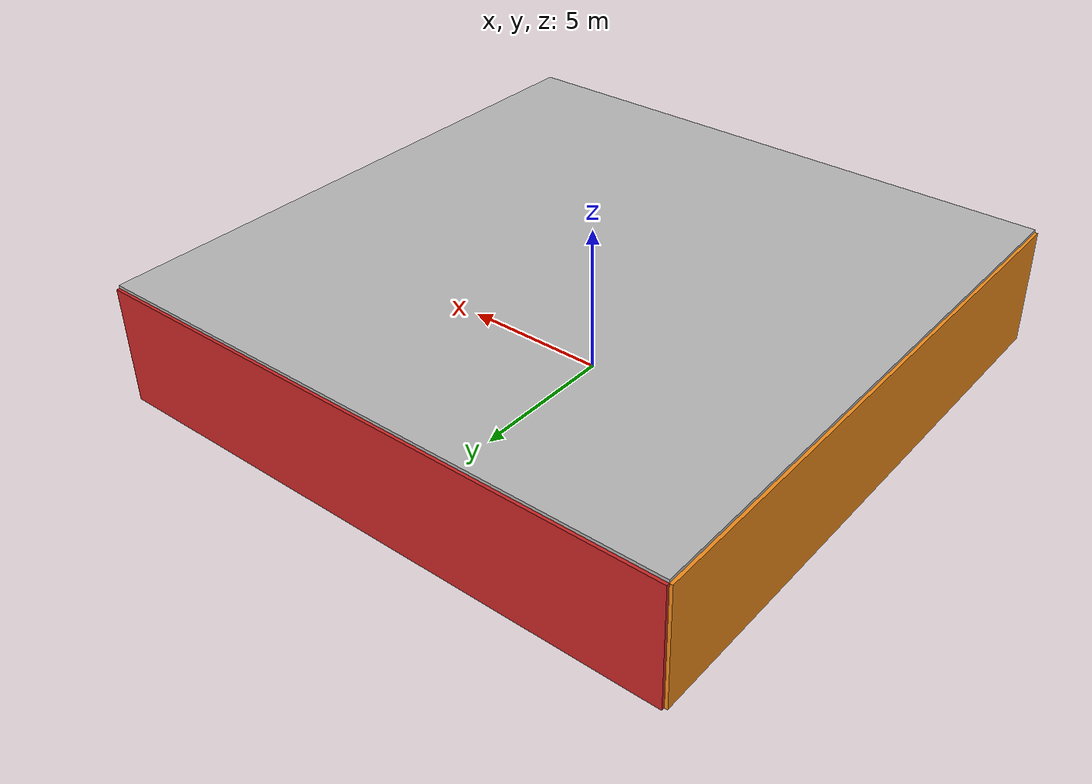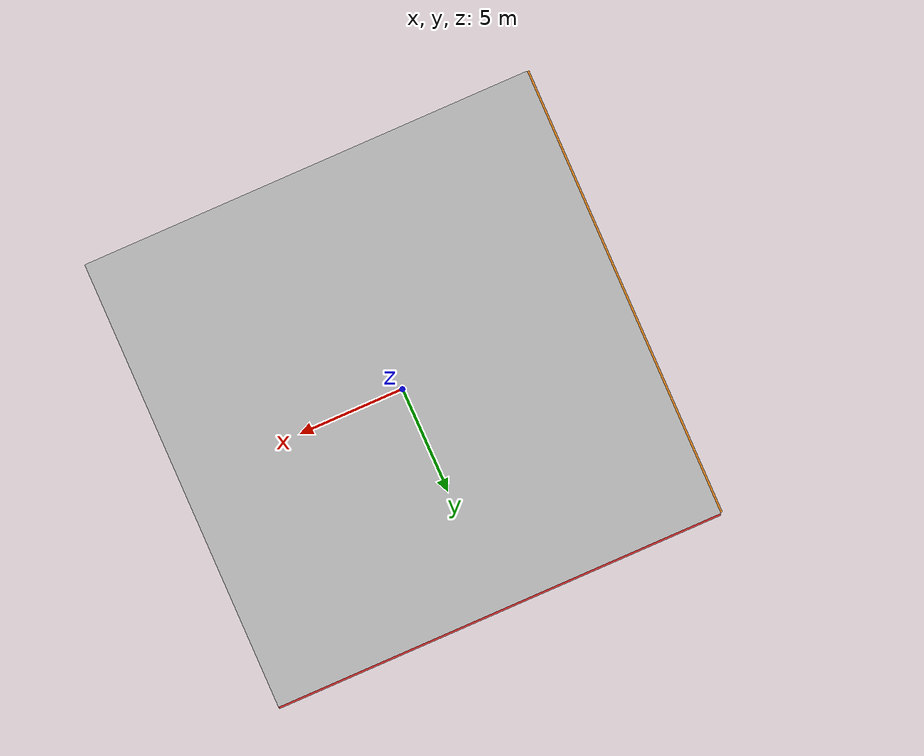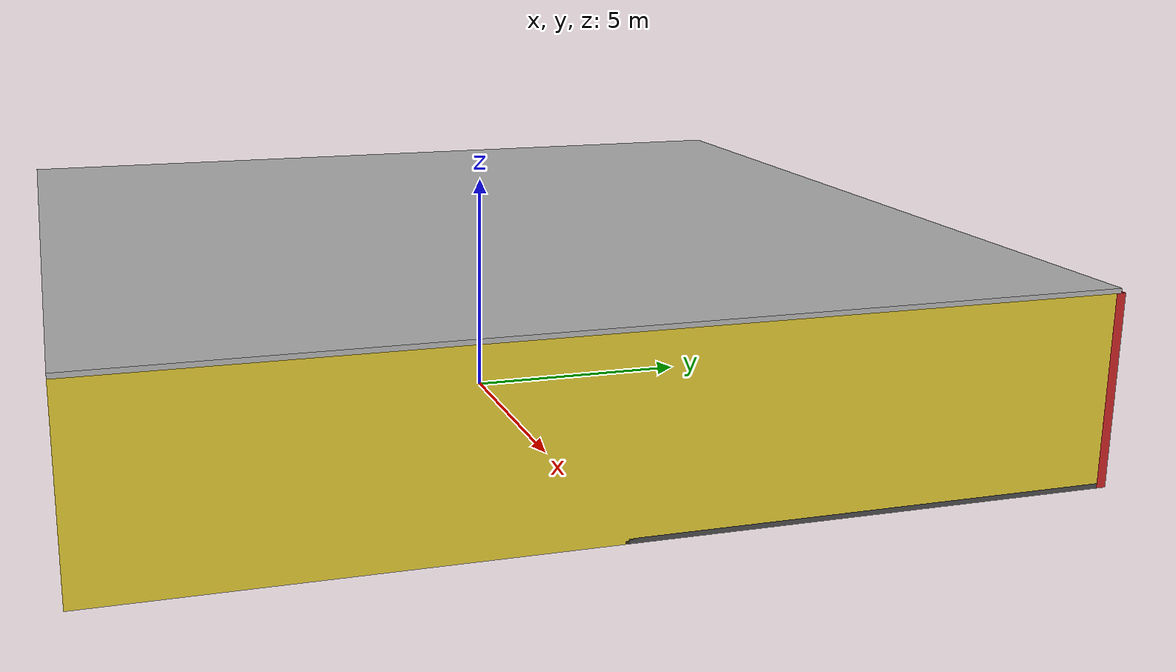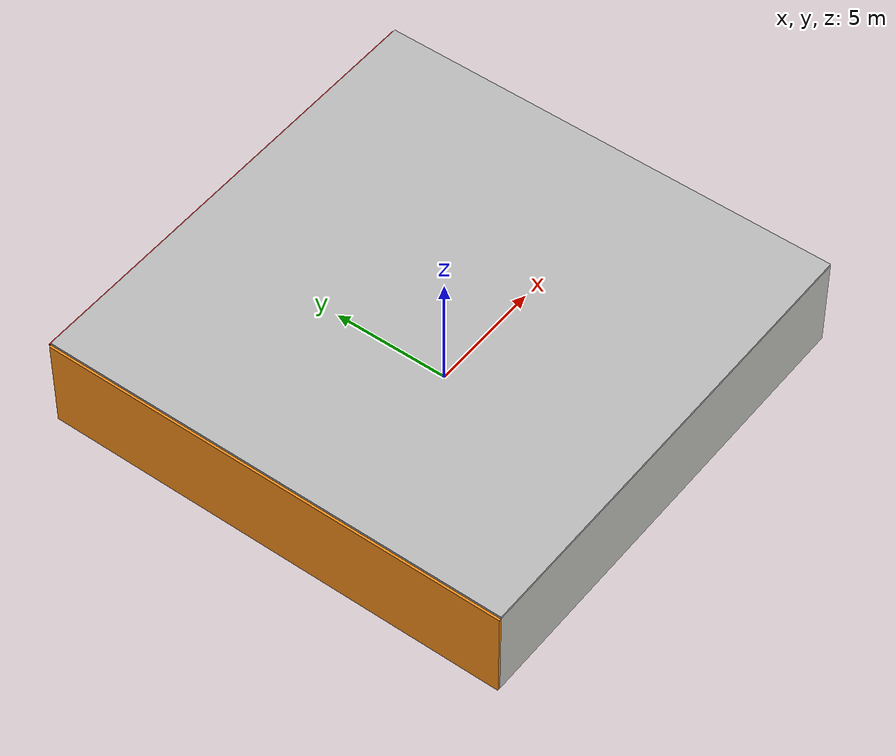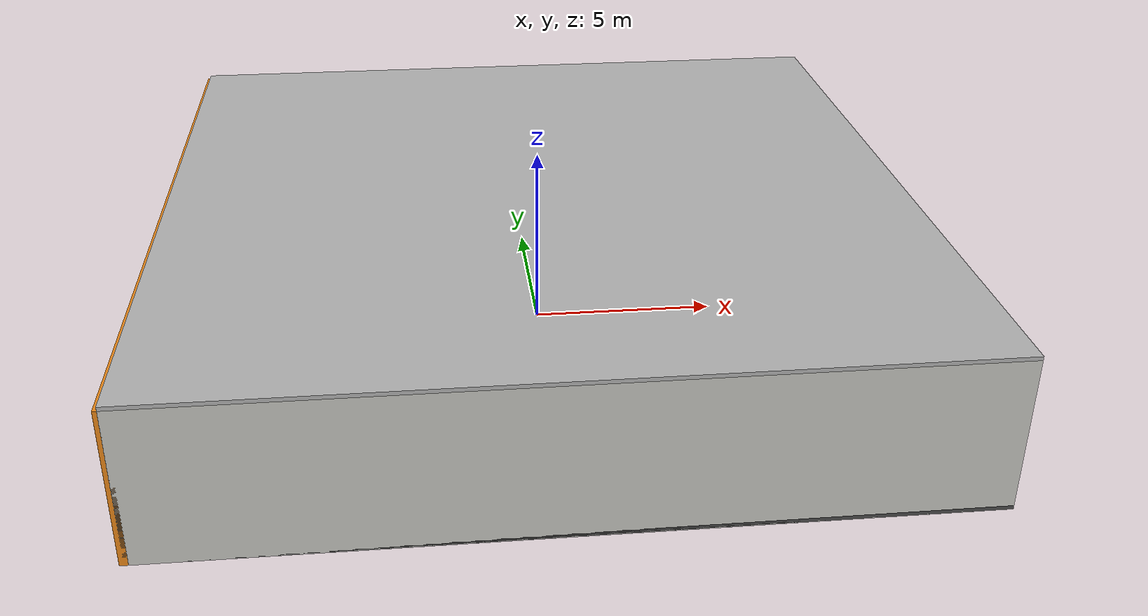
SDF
<sdf version="1.4">
 <world name="default">
  <physics type="ode">
   <max_step_size>0.001</max_step_size>
   <real_time_factor>1</real_time_factor>
   <real_time_update_rate>1000</real_time_update_rate>
   <gravity>0 0 -9.8</gravity>
  </physics>
  <scene><ambient>0.4 0.4 0.4 1</ambient><background>0.7 0.7 0.7 1</background><shadows>1</shadows></scene>
  <model name="Surrounding">
   <static>1</static>
   <link name="Ceiling">
    <collision name="Ceiling_Collision"><geometry><box><size>20 20 0.1</size></box></geometry></collision>
    <visual name="Ceiling_Visual">
     <geometry><box><size>20 20 0.1</size></box></geometry>
     <material>
      <script><uri>file://media/materials/scripts/gazebo.material</uri><name>Gazebo/LightOff</name></script>
     </material>
    </visual>
    <pose>0 0 4.05 0 0 0</pose>
   </link>
   <link name="Wall_South">
    <collision name="Wall_South_Collision">
     <geometry><box><size>20 0 4</size></box></geometry>
     <pose>0 0 2 0 -0 0</pose>
    </collision>
    <visual name="Wall_South_Visual">
     <pose>0 0 2 0 -0 0</pose>
     <geometry><box><size>20 0 4</size></box></geometry>
     <material>
      <script><uri>file://media/materials/scripts/gazebo.material</uri><name>Gazebo/CeilingTiled</name></script>
     </material>
    </visual>
    <velocity_decay><linear>0</linear><angular>0</angular></velocity_decay>
    <pose>0 -10 0 0 -0 0</pose>
   </link>
   <link name="Wall_East">
    <collision name="Wall_21_Collision">
     <geometry><box><size>20 0 4</size></box></geometry>
     <pose>0 0 2 0 -0 0</pose>
    </collision>
    <visual name="Wall_21_Visual">
     <pose>0 0 2 0 -0 0</pose>
     <geometry><box><size>20 0 4</size></box></geometry>
     <material>
      <script><uri>file://media/materials/scripts/gazebo.material</uri><name>Gazebo/ZincYellow</name></script>
     </material>
    </visual>
    <velocity_decay><linear>0</linear><angular>0</angular></velocity_decay>
    <pose>10 0 0 0 -0 1.5708</pose>
   </link>
   <link name="Wall_North">
    <collision name="Wall_22_Collision">
     <geometry><box><size>20 0.2 4</size></box></geometry>
     <pose>0 0 2 0 -0 0</pose>
    </collision>
    <visual name="Wall_22_Visual">
     <pose>0 0 2 0 -0 0</pose>
     <geometry><box><size>20 0.2 4</size></box></geometry>
     <material>
      <script><uri>file://media/materials/scripts/gazebo.material</uri><name>Gazebo/RedBright</name></script>
     </material>
    </visual>
    <velocity_decay><linear>0</linear><angular>0</angular></velocity_decay>
    <pose>0 10 0 0 -0 0</pose>
   </link>
   <link name="Wall_West">
    <collision name="Wall_23_Collision">
     <geometry><box><size>20 0.2 4</size></box></geometry>
     <pose>0 0 2 0 -0 0</pose>
    </collision>
    <visual name="Wall_23_Visual">
     <pose>0 0 2 0 -0 0</pose>
     <geometry><box><size>20 0.2 4</size></box></geometry>
     <material>
      <script><uri>file://media/materials/scripts/gazebo.material</uri><name>Gazebo/Orange</name></script>
     </material>
    </visual>
    <velocity_decay><linear>0</linear><angular>0</angular></velocity_decay>
    <pose>-10 0 0 0 0 -1.5708</pose>
   </link>
   <link name="Ground_link">
    <collision name="collision">
     <pose>0 0 .05 0 -0 0</pose>
     <geometry><box><size>20 20 0.1</size></box></geometry>
    </collision>
    <visual name="visual">
     <pose>0 0 .05 0 -0 0</pose>
     <geometry><box><size>20 20 0.1</size></box></geometry>
     <material>
      <script><uri>file://media/materials/scripts/gazebo.material</uri><name>Gazebo/DarkGrey</name></script>
     </material>
    </visual>
   </link>
   <static>1</static>
  </model>
  <spherical_coordinates>
   <surface_model>EARTH_WGS84</surface_model>
   <latitude_deg>0</latitude_deg>
   <longitude_deg>0</longitude_deg>
   <elevation>0</elevation>
   <heading_deg>0</heading_deg>
  </spherical_coordinates>
  <light name="lightball_0" type="diffuse">
   <diffuse>0.8 0.8 0.8 1</diffuse>
   <specular>0.2 0.2 0.2 1</specular>
   <attenuation>
    <range>100</range>
    <constant>0.7</constant>
    <linear>0.01</linear>
    <quadratic>0.001</quadratic>
   </attenuation>
   <direction>-0.5 0.1 -0.9</direction>
   <pose>9.75379502293 5.22299925387 3.54563603432 0 0 0</pose>
  </light>
  <light name="lightball_1" type="diffuse">
   <diffuse>0.8 0.8 0.8 1</diffuse>
   <specular>0.2 0.2 0.2 1</specular>
   <attenuation>
    <range>100</range>
    <constant>0.7</constant>
    <linear>0.01</linear>
    <quadratic>0.001</quadratic>
   </attenuation>
   <direction>-0.5 0.1 -0.9</direction>
   <pose>4.8613117871 6.20592162429 3.20650017933 0 0 0</pose>
  </light>
  <light name="lightball_2" type="diffuse">
   <diffuse>0.8 0.8 0.8 1</diffuse>
   <specular>0.2 0.2 0.2 1</specular>
   <attenuation>
    <range>100</range>
    <constant>0.7</constant>
    <linear>0.01</linear>
    <quadratic>0.001</quadratic>
   </attenuation>
   <direction>-0.5 0.1 -0.9</direction>
   <pose>3.61953346966 -7.15001384966 2.30111035458 0 0 0</pose>
  </light>
  <light name="lightball_3" type="diffuse">
   <diffuse>0.8 0.8 0.8 1</diffuse>
   <specular>0.2 0.2 0.2 1</specular>
   <attenuation>
    <range>100</range>
    <constant>0.7</constant>
    <linear>0.01</linear>
    <quadratic>0.001</quadratic>
   </attenuation>
   <direction>-0.5 0.1 -0.9</direction>
   <pose>-3.00861466092 -6.07999579871 0.984973443116 0 0 0</pose>
  </light>
  <light name="lightball_4" type="diffuse">
   <diffuse>0.8 0.8 0.8 1</diffuse>
   <specular>0.2 0.2 0.2 1</specular>
   <attenuation>
    <range>100</range>
    <constant>0.7</constant>
    <linear>0.01</linear>
    <quadratic>0.001</quadratic>
   </attenuation>
   <direction>-0.5 0.1 -0.9</direction>
   <pose>0.816440647269 7.89077212101 0.987302139465 0 0 0</pose>
  </light>
  <light name="lightball_5" type="diffuse">
   <diffuse>0.8 0.8 0.8 1</diffuse>
   <specular>0.2 0.2 0.2 1</specular>
   <attenuation>
    <range>100</range>
    <constant>0.7</constant>
    <linear>0.01</linear>
    <quadratic>0.001</quadratic>
   </attenuation>
   <direction>-0.5 0.1 -0.9</direction>
   <pose>-1.50697557592 7.11656789114 0.981764758179 0 0 0</pose>
  </light>
  <light name="lightball_6" type="diffuse">
   <diffuse>0.8 0.8 0.8 1</diffuse>
   <specular>0.2 0.2 0.2 1</specular>
   <attenuation>
    <range>100</range>
    <constant>0.7</constant>
    <linear>0.01</linear>
    <quadratic>0.001</quadratic>
   </attenuation>
   <direction>-0.5 0.1 -0.9</direction>
   <pose>8.97899305009 -6.10249333836 1.40724844488 0 0 0</pose>
  </light>
  <light name="lightball_7" type="diffuse">
   <diffuse>0.8 0.8 0.8 1</diffuse>
   <specular>0.2 0.2 0.2 1</specular>
   <attenuation>
    <range>100</range>
    <constant>0.7</constant>
    <linear>0.01</linear>
    <quadratic>0.001</quadratic>
   </attenuation>
   <direction>-0.5 0.1 -0.9</direction>
   <pose>1.42422586102 -7.73610299485 3.39832099497 0 0 0</pose>
  </light>
  <light name="lightball_8" type="diffuse">
   <diffuse>0.8 0.8 0.8 1</diffuse>
   <specular>0.2 0.2 0.2 1</specular>
   <attenuation>
    <range>100</range>
    <constant>0.7</constant>
    <linear>0.01</linear>
    <quadratic>0.001</quadratic>
   </attenuation>
   <direction>-0.5 0.1 -0.9</direction>
   <pose>-3.71738559241 2.4664898024 1.31357020277 0 0 0</pose>
  </light>
  <light name="lightball_9" type="diffuse">
   <diffuse>0.8 0.8 0.8 1</diffuse>
   <specular>0.2 0.2 0.2 1</specular>
   <attenuation>
    <range>100</range>
    <constant>0.7</constant>
    <linear>0.01</linear>
    <quadratic>0.001</quadratic>
   </attenuation>
   <direction>-0.5 0.1 -0.9</direction>
   <pose>-2.12030145598 2.98087122088 0.898067017659 0 0 0</pose>
  </light>
  <include>
   <uri>model://construction_cone</uri>
   <pose>-4.57249996492 1.802137626 0 0 0 1.91014632753</pose>
  </include>
  <include>
   <uri>model://construction_cone</uri>
   <pose>-1.19357871626 -4.11086973114 0 0 0 0.30456511672</pose>
  </include>
  <include>
   <uri>model://textured_shapes</uri>
   <pose>3.7667640707 -7.2223985151 0 0 0 0.596215612567</pose>
  </include>
  <include><uri>model://cabinet</uri><pose>4.59262269595 1.36115821027 0 0 0 1.55232395381</pose></include>
  <include>
   <uri>model://textured_shapes</uri>
   <pose>4.16842156004 3.73213597349 0 0 0 0.476173715341</pose>
  </include>
  <include><uri>model://table</uri><pose>7.2774025155 7.32057035287 0 0 0 1.85847658491</pose></include>
 </world>
</sdf>

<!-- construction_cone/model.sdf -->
<sdf version="1.5">
  <model name="Construction Cone">
    <link name="link">
      <collision name="collision">
        <geometry>
          <mesh>
            <scale>10 10 10</scale>
            <uri>file://isr-testbed/construction_cone/meshes/construction_cone.dae</uri>
          </mesh>
        </geometry>
      </collision>
      <visual name="visual">
        <geometry>
          <mesh>
            <scale>10 10 10</scale>
            <uri>file://isr-testbed/construction_cone/meshes/construction_cone.dae</uri>
          </mesh>
        </geometry>
      </visual>
    </link>
  </model>
</sdf>

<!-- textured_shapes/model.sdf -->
<sdf version="1.6">
  <model name="textured_shapes">
    <pose>0 0 0.5 0 0 0</pose>
    <link name="box">
      <pose>0 -1.5 0 0 0 0</pose>
      <collision name="collision">
        <geometry>
          <box>
            <size>1 1 1</size>
          </box>
        </geometry>
      </collision>
      <visual name="visual">
        <geometry>
          <box>
            <size>1 1 1</size>
          </box>
        </geometry>
        <material>
          <script>
            <uri>model://../model_source/models/textured_shapes/materials/scripts</uri>
            <uri>model://../model_source/models/textured_shapes/materials/textures</uri>
            <name>TexturedShape/Squares</name>
          </script>
        </material>
      </visual>
    </link>
    <link name="sphere">
      <collision name="collision">
        <geometry>
          <sphere>
            <radius>0.5</radius>
          </sphere>
        </geometry>
      </collision>
      <visual name="visual">
        <geometry>
          <sphere>
            <radius>0.5</radius>
          </sphere>
        </geometry>
        <material>
          <script>
            <uri>model://../model_source/models/textured_shapes/materials/scripts</uri>
            <uri>model://../model_source/models/textured_shapes/materials/textures</uri>
            <name>TexturedShape/Squares</name>
          </script>
        </material>
      </visual>
    </link>
    <link name="cylinder">
      <pose>0 1.5 0 0 0 0</pose>
      <collision name="collision">
        <geometry>
          <cylinder>
            <radius>0.5</radius>
            <length>1</length>
          </cylinder>
        </geometry>
      </collision>
      <visual name="visual">
        <geometry>
          <cylinder>
            <radius>0.5</radius>
            <length>1</length>
          </cylinder>
        </geometry>
        <material>
          <script>
            <uri>model://../model_source/models/textured_shapes/materials/scripts</uri>
            <uri>model://../model_source/models/textured_shapes/materials/textures</uri>
            <name>TexturedShape/Squares</name>
          </script>
        </material>
      </visual>
    </link>
  </model>
</sdf>

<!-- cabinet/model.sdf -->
<sdf version="1.5">
  <model name="cabinet">
    <static>true</static>
    <link name="cabinet_bottom_plate">
      <inertial>
        <pose>0 0 -1 0 0 0</pose>
        <inertia>
          <ixx>2.050000</ixx>
          <ixy>0</ixy>
          <ixz>0</ixz>
          <iyy>2.050000</iyy>
          <iyz>0</iyz>
          <izz>2.050000</izz>
        </inertia>
        <mass>25.000000</mass>
      </inertial>
      <collision name="cabinet_bottom_plate_geom">
        <pose>0 0 0.010000 0 0 0</pose>
        <geometry>
          <box>
            <size>0.450000 0.450000 0.020000</size>
          </box>
        </geometry>
      </collision>
      <visual name="cabinet_bottom_plate_geom_visual">
        <pose>0 0 0.010000 0 0 0</pose>
        <geometry>
          <box>
            <size>0.450000 0.450000 0.020000</size>
          </box>
        </geometry>
        <material>
          <script>
            <uri>model://media/materials/scripts/gazebo.material</uri>
            <name>Gazebo/Wood</name>
          </script>
        </material>
      </visual>
      <collision name="cabinet_bottom_plate_geom_cabinet_back_plate">
        <pose>0.235000 0 0.510000 0 0 0</pose>
        <geometry>
          <box>
            <size>0.020000 0.450000 1.020000</size>
          </box>
        </geometry>
      </collision>
      <visual name="cabinet_bottom_plate_geom_cabinet_back_plate_visual">
        <pose>0.235000 0 0.510000 0 0 0</pose>
        <geometry>
          <box>
            <size>0.020000 0.450000 1.020000</size>
          </box>
        </geometry>
        <material>
          <script>
            <uri>model://media/materials/scripts/gazebo.material</uri>
            <name>Gazebo/Wood</name>
          </script>
        </material>
      </visual>
      <collision name="cabinet_bottom_plate_geom_cabinet_left_plate">
        <pose>0 0.235000 0.510000 0 0 0</pose>
        <geometry>
          <box>
            <size>0.450000 0.020000 1.020000</size>
          </box>
        </geometry>
      </collision>
      <visual name="cabinet_bottom_plate_geom_cabinet_left_plate_visual">
        <pose>0 0.235000 0.510000 0 0 0</pose>
        <geometry>
          <box>
            <size>0.450000 0.020000 1.020000</size>
          </box>
        </geometry>
        <material>
          <script>
            <uri>model://media/materials/scripts/gazebo.material</uri>
            <name>Gazebo/Wood</name>
          </script>
        </material>
      </visual>
      <collision name="cabinet_bottom_plate_geom_cabinet_middle_plate">
        <pose>0 0 0.510000 0 0 0</pose>
        <geometry>
          <box>
            <size>0.450000 0.450000 0.020000</size>
          </box>
        </geometry>
      </collision>
      <visual name="cabinet_bottom_plate_geom_cabinet_middle_plate_visual">
        <pose>0 0 0.510000 0 0 0</pose>
        <geometry>
          <box>
            <size>0.450000 0.450000 0.020000</size>
          </box>
        </geometry>
        <material>
          <script>
            <uri>model://media/materials/scripts/gazebo.material</uri>
            <name>Gazebo/Wood</name>
          </script>
        </material>
      </visual>
      <collision name="cabinet_bottom_plate_geom_cabinet_right_plate">
        <pose>0 -0.235000 0.510000 0 0 0</pose>
        <geometry>
          <box>
            <size>0.450000 0.020000 1.020000</size>
          </box>
        </geometry>
      </collision>
      <visual name="cabinet_bottom_plate_geom_cabinet_right_plate_visual">
        <pose>0 -0.235000 0.510000 0 0 0</pose>
        <geometry>
          <box>
            <size>0.450000 0.020000 1.020000</size>
          </box>
        </geometry>
        <material>
          <script>
            <uri>model://media/materials/scripts/gazebo.material</uri>
            <name>Gazebo/Wood</name>
          </script>
        </material>
      </visual>
      <collision name="cabinet_bottom_plate_geom_cabinet_top_plate">
        <pose>0 0 1.010000 0 0 0</pose>
        <geometry>
          <box>
            <size>0.450000 0.450000 0.020000</size>
          </box>
        </geometry>
      </collision>
      <visual name="cabinet_bottom_plate_geom_cabinet_top_plate_visual">
        <pose>0 0 1.010000 0 0 0</pose>
        <geometry>
          <box>
            <size>0.450000 0.450000 0.020000</size>
          </box>
        </geometry>
        <material>
          <script>
            <uri>model://media/materials/scripts/gazebo.material</uri>
            <name>Gazebo/Wood</name>
          </script>
        </material>
      </visual>
    </link>
  </model>
</sdf>

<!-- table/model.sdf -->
<sdf version="1.5">
  <model name="table">
    <static>true</static>
    <link name="link">
      <collision name="surface">
        <pose>0 0 1.0 0 0 0</pose>
        <geometry>
          <box>
            <size>1.5 0.8 0.03</size>
          </box>
        </geometry>
        <surface>
          <friction>
            <ode>
              <mu>0.6</mu>
              <mu2>0.6</mu2>
            </ode>
          </friction>
        </surface>
      </collision>
      <visual name="visual1">
        <pose>0 0 1.0 0 0 0</pose>
        <geometry>
          <box>
            <size>1.5 0.8 0.03</size>
          </box>
        </geometry>
        <material>
          <script>
            <uri>model://media/materials/scripts/gazebo.material</uri>
            <name>Gazebo/Wood</name>
          </script>
        </material>
      </visual>
      <collision name="front_left_leg">
        <pose>0.68 0.38 0.5 0 0 0</pose>
        <geometry>
          <cylinder>
            <radius>0.02</radius>
            <length>1.0</length>
          </cylinder>
        </geometry>
      </collision>
      <visual name="front_left_leg">
        <pose>0.68 0.38 0.5 0 0 0</pose>
        <geometry>
          <cylinder>
            <radius>0.02</radius>
            <length>1.0</length>
          </cylinder>
        </geometry>
        <material>
          <script>
            <uri>model://media/materials/scripts/gazebo.material</uri>
            <name>Gazebo/Grey</name>
          </script>
        </material>
      </visual>
      <collision name="front_right_leg">
        <pose>0.68 -0.38 0.5 0 0 0</pose>
        <geometry>
          <cylinder>
            <radius>0.02</radius>
            <length>1.0</length>
          </cylinder>
        </geometry>
      </collision>
      <visual name="front_right_leg">
        <pose>0.68 -0.38 0.5 0 0 0</pose>
        <geometry>
          <cylinder>
            <radius>0.02</radius>
            <length>1.0</length>
          </cylinder>
        </geometry>
        <material>
          <script>
            <uri>model://media/materials/scripts/gazebo.material</uri>
            <name>Gazebo/Grey</name>
          </script>
        </material>
      </visual>
      <collision name="back_right_leg">
        <pose>-0.68 -0.38 0.5 0 0 0</pose>
        <geometry>
          <cylinder>
            <radius>0.02</radius>
            <length>1.0</length>
          </cylinder>
        </geometry>
      </collision>
      <visual name="back_right_leg">
        <pose>-0.68 -0.38 0.5 0 0 0</pose>
        <geometry>
          <cylinder>
            <radius>0.02</radius>
            <length>1.0</length>
          </cylinder>
        </geometry>
        <material>
          <script>
            <uri>model://media/materials/scripts/gazebo.material</uri>
            <name>Gazebo/Grey</name>
          </script>
        </material>
      </visual>
      <collision name="back_left_leg">
        <pose>-0.68 0.38 0.5 0 0 0</pose>
        <geometry>
          <cylinder>
            <radius>0.02</radius>
            <length>1.0</length>
          </cylinder>
        </geometry>
      </collision>
      <visual name="back_left_leg">
        <pose>-0.68 0.38 0.5 0 0 0</pose>
        <geometry>
          <cylinder>
            <radius>0.02</radius>
            <length>1.0</length>
          </cylinder>
        </geometry>
        <material>
          <script>
            <uri>model://media/materials/scripts/gazebo.material</uri>
            <name>Gazebo/Grey</name>
          </script>
        </material>
      </visual>
    </link>
  </model>
</sdf>
